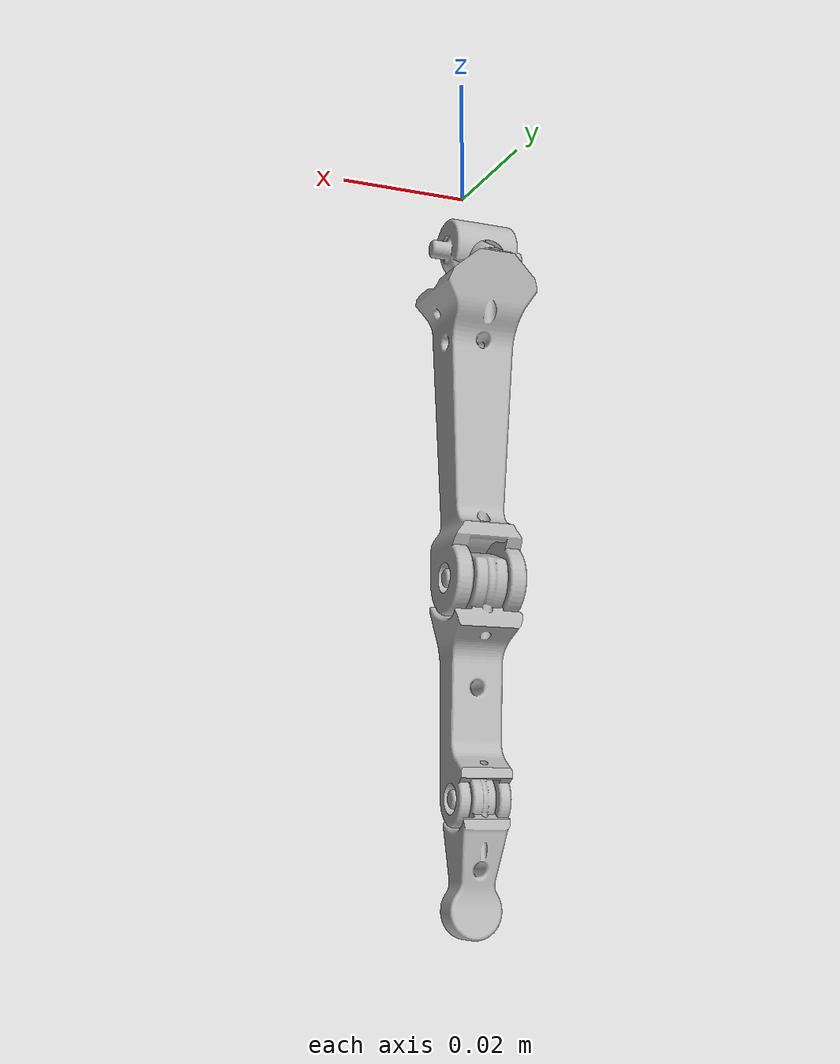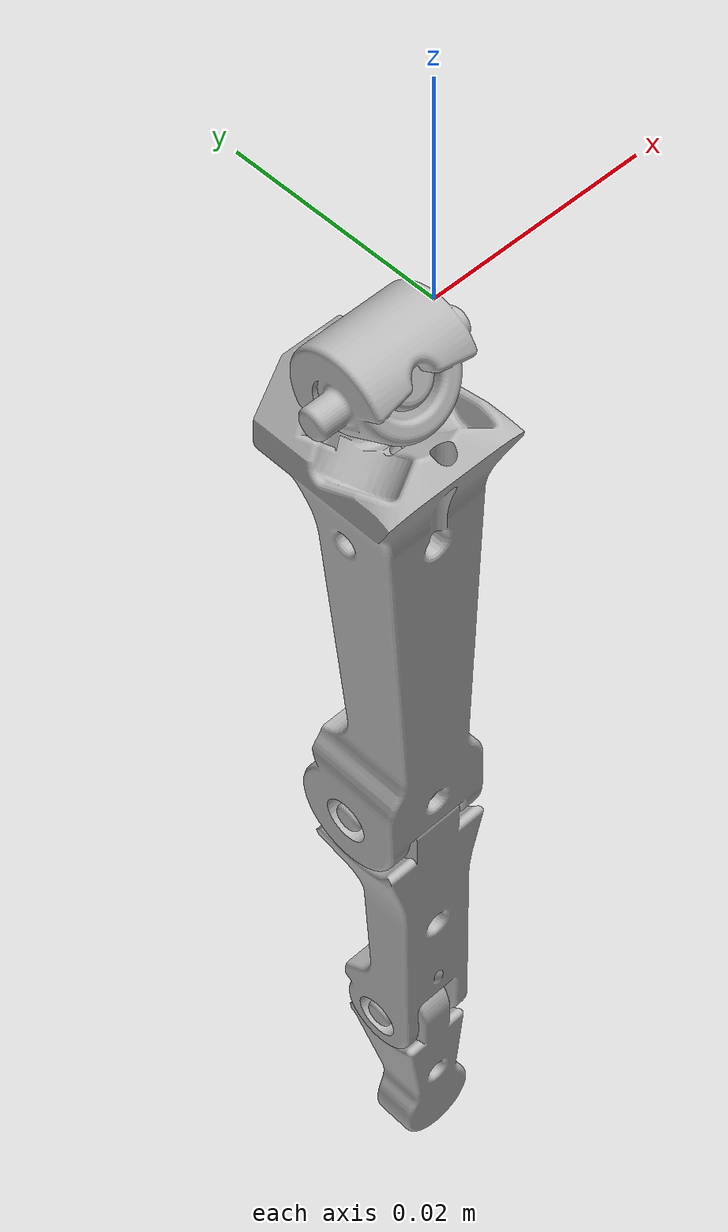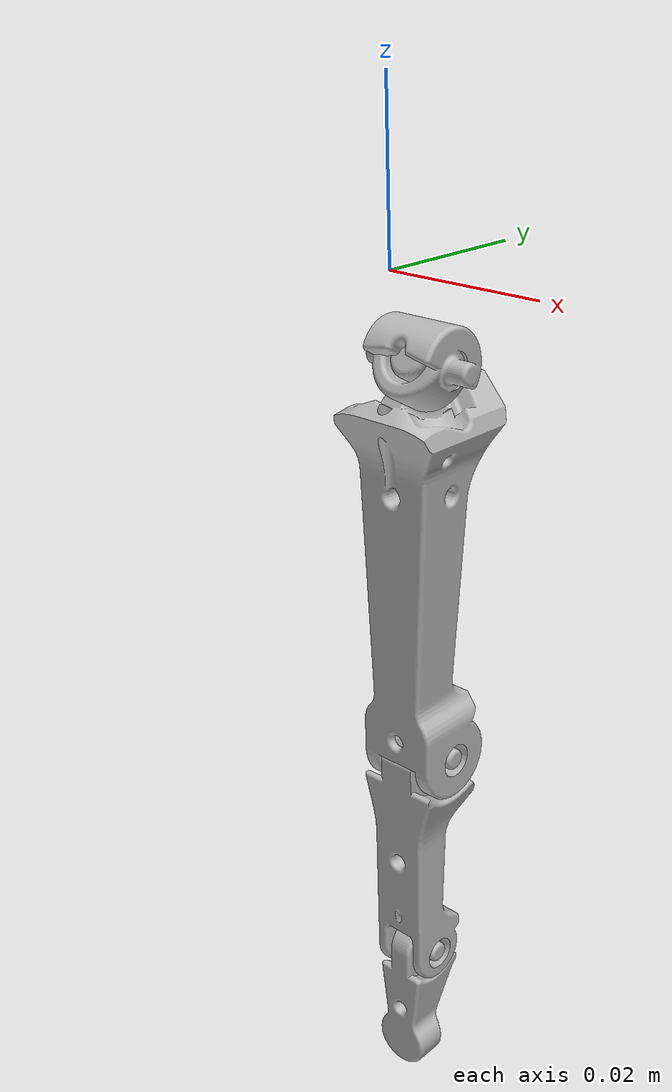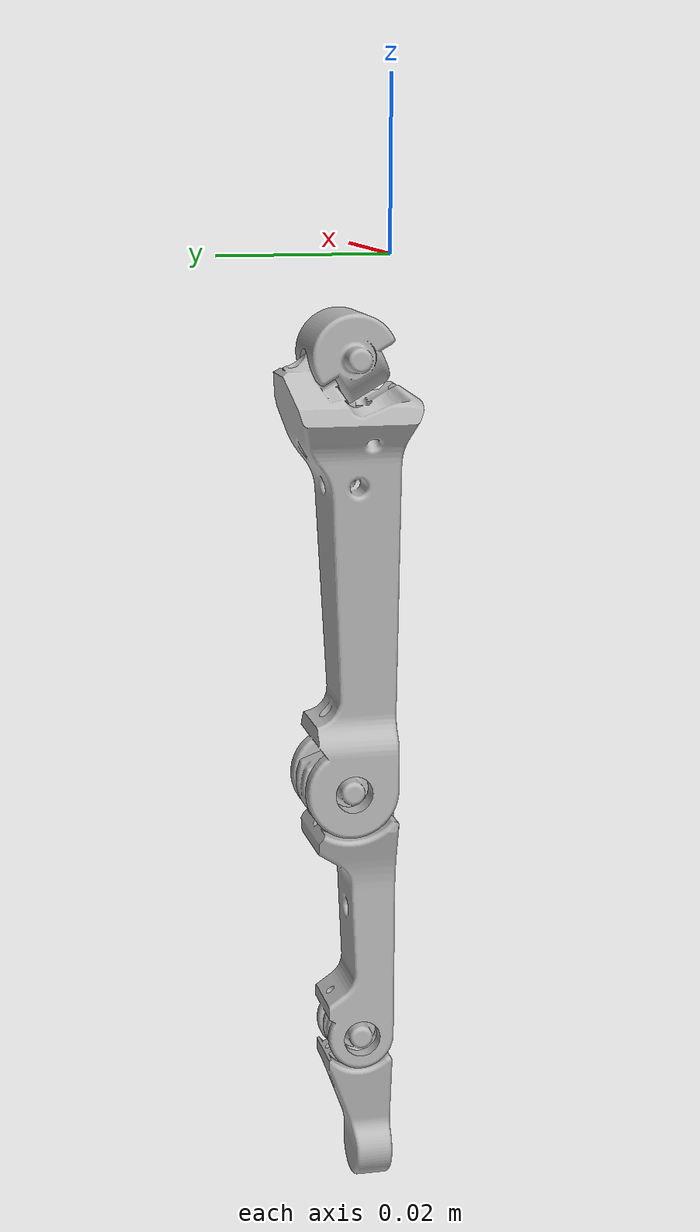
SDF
<?xml version="1.0" ?>
<sdf version="1.6">
	<model name="NewFingerTest">
		<link name="limb0">
			<pose frame="">8.078672351106294e-07 0.005136107528913884 -0.010543528678626304 0.0 -0.0 0.0</pose>
			<inertial>
				<pose frame="">0.0 0.0 0.0 0 0 0</pose>
				<mass>0.0008539789322509442</mass>
				<inertia>
					<ixx>1.2784805038508332e-07</ixx>
					<ixy>-5.856103434550522e-12</ixy>
					<ixz>4.5558208765985047e-08</ixz>
					<iyy>1.1082327352580405e-07</iyy>
					<iyz>7.411065081782657e-12</iyz>
					<izz>3.739638848496462e-08</izz>
				</inertia>
			</inertial>
			<collision name="limb0_collision">
				<geometry>
					<mesh>
						<uri>model://NewFingerTest/meshes/CAD/limb0.stl</uri>
						<scale>0.001 0.001 0.001</scale>
					</mesh>
				</geometry>
			</collision>
			<visual name="limb0_visual">
				<geometry>
					<mesh>
						<uri>model://NewFingerTest/meshes/CAD/limb0.stl</uri>
						<scale>0.001 0.001 0.001</scale>
					</mesh>
				</geometry>
			</visual>
		</link>
		<link name="limb1">
			<pose frame="">3.155157163693057e-08 0.004530162396040428 -0.03538163551348982 0.0 -0.0 0.0</pose>
			<inertial>
				<pose frame="">0.0 0.0 0.0 0 0 0</pose>
				<mass>0.007658954433011909</mass>
				<inertia>
					<ixx>1.1585402732909598e-05</ixx>
					<ixy>-2.0203458281534916e-12</ixy>
					<ixz>1.0764039606781593e-06</ixz>
					<iyy>1.1448429938054762e-05</iyy>
					<iyz>4.571171730404089e-12</iyz>
					<izz>2.866777257874622e-07</izz>
				</inertia>
			</inertial>
			<collision name="limb1_collision">
				<geometry>
					<mesh>
						<uri>model://NewFingerTest/meshes/CAD/limb1.stl</uri>
						<scale>0.001 0.001 0.001</scale>
					</mesh>
				</geometry>
			</collision>
			<visual name="limb1_visual">
				<geometry>
					<mesh>
						<uri>model://NewFingerTest/meshes/CAD/limb1.stl</uri>
						<scale>0.001 0.001 0.001</scale>
					</mesh>
				</geometry>
			</visual>
		</link>
		<link name="limb2">
			<pose frame="">-1.4426906697284046e-07 0.0037589258649288033 -0.07512775707203011 0.0 -0.0 0.0</pose>
			<inertial>
				<pose frame="">0.0 0.0 0.0 0 0 0</pose>
				<mass>0.003249582706135075</mass>
				<inertia>
					<ixx>1.8649515048434665e-05</ixx>
					<ixy>2.234107098967741e-12</ixy>
					<ixz>8.199133313360863e-07</ixz>
					<iyy>1.8608686591128822e-05</iyy>
					<iyz>-2.7998228455494803e-11</iyz>
					<izz>7.895531093202919e-08</izz>
				</inertia>
			</inertial>
			<collision name="limb2_collision">
				<geometry>
					<mesh>
						<uri>model://NewFingerTest/meshes/CAD/limb2.stl</uri>
						<scale>0.001 0.001 0.001</scale>
					</mesh>
				</geometry>
			</collision>
			<visual name="limb2_visual">
				<geometry>
					<mesh>
						<uri>model://NewFingerTest/meshes/CAD/limb2.stl</uri>
						<scale>0.001 0.001 0.001</scale>
					</mesh>
				</geometry>
			</visual>
		</link>
		<link name="limb3">
			<pose frame="">-2.7022235334253383e-08 0.003023961271125203 -0.1022568210976421 0.0 -0.0 0.0</pose>
			<inertial>
				<pose frame="">0.0 0.0 0.0 0 0 0</pose>
				<mass>0.0013887496747647889</mass>
				<inertia>
					<ixx>1.4543895011912224e-05</ixx>
					<ixy>1.954121228342265e-13</ixy>
					<ixz>3.82234398646044e-07</ixz>
					<iyy>1.4532750107820617e-05</iyy>
					<iyz>-3.392281679043352e-12</iyz>
					<izz>2.0064699518540843e-08</izz>
				</inertia>
			</inertial>
			<collision name="limb3_collision">
				<geometry>
					<mesh>
						<uri>model://NewFingerTest/meshes/CAD/limb3.stl</uri>
						<scale>0.001 0.001 0.001</scale>
					</mesh>
				</geometry>
			</collision>
			<visual name="limb3_visual">
				<geometry>
					<mesh>
						<uri>model://NewFingerTest/meshes/CAD/limb3.stl</uri>
						<scale>0.001 0.001 0.001</scale>
					</mesh>
				</geometry>
			</visual>
		</link>
		<joint name="joint01" type="revolute">
			<parent>limb0</parent>
			<child>limb1</child>
			<pose frame="">-3.155157163693057e-08 -0.0021282386073937427 0.025631635513489823 0 0 0</pose>
			<axis>
				<xyz>6.842277657836021e-49 -0.8660254037844388 0.5</xyz>
				<limit>
					<lower>-0.6108652381980153</lower>
					<upper>0.6108652381980153</upper>
				</limit>
				<use_parent_model_frame>0</use_parent_model_frame>
			</axis>
		</joint>
		<joint name="joint12" type="revolute">
			<parent>limb1</parent>
			<child>limb2</child>
			<pose frame="">-0.005499855730933027 0.001308061433178977 0.012752757072030097 0 0 0</pose>
			<axis>
				<xyz>1.0 0.0 0.0</xyz>
				<limit>
					<lower>-1.9198621771937625</lower>
					<upper>-0.0</upper>
				</limit>
				<use_parent_model_frame>0</use_parent_model_frame>
			</axis>
		</joint>
		<joint name="joint23" type="revolute">
			<parent>limb2</parent>
			<child>limb3</child>
			<pose frame="">-0.003999972977764666 0.0005430260269825732 0.008132071097642087 0 0 0</pose>
			<axis>
				<xyz>1.0 0.0 0.0</xyz>
				<limit>
					<lower>-1.2217304763960306</lower>
					<upper>-0.0</upper>
				</limit>
				<use_parent_model_frame>0</use_parent_model_frame>
			</axis>
		</joint>
		<plugin filename="libmyomuscle_plugin.so" name="myomuscle_plugin"/>
	</model>
</sdf>
